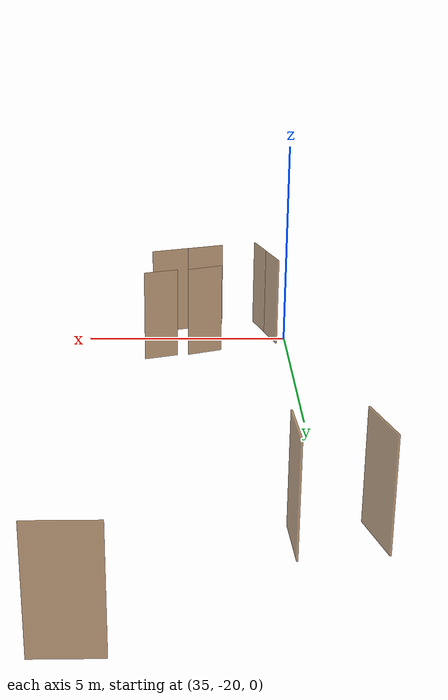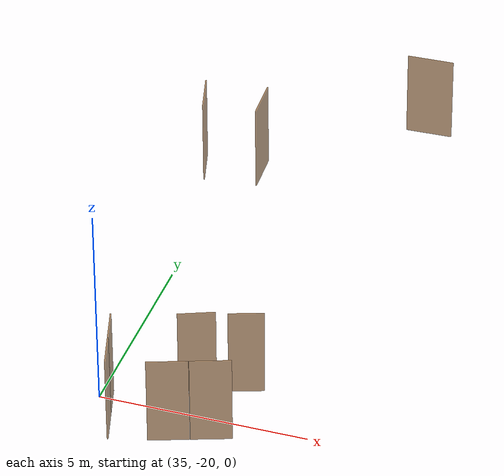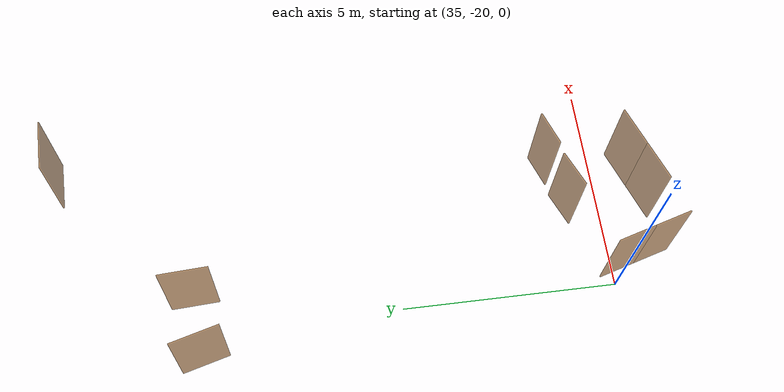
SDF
<sdf version="1.7">
 <world name="world">
  <model name="D27">
   <pose>34.2491 -10.3948 0 0 -0 1.83761</pose>
   <link name="right">
    <pose>0 0 1.11 0 -0 0</pose>
    <visual name="right_visual">
     <geometry><box><size>1.1359 0.03 2.2</size></box></geometry>
     <material><ambient>0.5 0.25 0 0.6</ambient><diffuse>0.5 0.25 0 0.6</diffuse></material>
    </visual>
    <collision name="right_collision">
     <geometry><box><size>1.1359 0.03 2.2</size></box></geometry>
     <surface><contact><collide_bitmask>2</collide_bitmask></contact></surface>
    </collision>
    <inertial>
     <mass>50</mass>
     <inertia><ixx>20.1704</ixx><iyy>25.5428</iyy><izz>5.37987</izz><ixy>0</ixy><ixz>0</ixz><iyz>0</iyz></inertia>
    </inertial>
   </link>
   <joint name="right_joint" type="revolute">
    <parent>world</parent>
    <child>right</child>
    <axis>
     <xyz>0 0 1</xyz>
     <limit><lower>0</lower><upper>1.57</upper></limit>
     <dynamics><spring_reference>0</spring_reference><spring_stiffness>0</spring_stiffness></dynamics>
    </axis>
    <pose>0.57295 0 0 0 -0 0</pose>
   </joint>
   <plugin name="door_D27" filename="libdoor.so">
    <v_max_door>0.5</v_max_door>
    <a_max_door>0.3</a_max_door>
    <a_nom_door>0.15</a_nom_door>
    <dx_min_door>0.01</dx_min_door>
    <f_max_door>500.0</f_max_door>
    <door name="D27" type="SwingDoor" left_joint_name="empty_joint" right_joint_name="right_joint"/>
   </plugin>
  </model>
  <model name="D28">
   <pose>35.6845 -10.236 0 0 -0 1.62689</pose>
   <link name="right">
    <pose>0 0 1.11 0 -0 0</pose>
    <visual name="right_visual">
     <geometry><box><size>1.11833 0.03 2.2</size></box></geometry>
     <material><ambient>0.5 0.25 0 0.6</ambient><diffuse>0.5 0.25 0 0.6</diffuse></material>
    </visual>
    <collision name="right_collision">
     <geometry><box><size>1.11833 0.03 2.2</size></box></geometry>
     <surface><contact><collide_bitmask>2</collide_bitmask></contact></surface>
    </collision>
    <inertial>
     <mass>50</mass>
     <inertia><ixx>20.1704</ixx><iyy>25.3777</iyy><izz>5.21482</izz><ixy>0</ixy><ixz>0</ixz><iyz>0</iyz></inertia>
    </inertial>
   </link>
   <joint name="right_joint" type="revolute">
    <parent>world</parent>
    <child>right</child>
    <axis>
     <xyz>0 0 1</xyz>
     <limit><lower>0</lower><upper>1.57</upper></limit>
     <dynamics><spring_reference>0</spring_reference><spring_stiffness>0</spring_stiffness></dynamics>
    </axis>
    <pose>0.564164 0 0 0 -0 0</pose>
   </joint>
   <plugin name="door_D28" filename="libdoor.so">
    <v_max_door>0.5</v_max_door>
    <a_max_door>0.3</a_max_door>
    <a_nom_door>0.15</a_nom_door>
    <dx_min_door>0.01</dx_min_door>
    <f_max_door>500.0</f_max_door>
    <door name="D28" type="SwingDoor" left_joint_name="empty_joint" right_joint_name="right_joint"/>
   </plugin>
  </model>
  <model name="D29">
   <pose>39.1322 -7.20514 0 0 -0 -3.11811</pose>
   <link name="right">
    <pose>0 0 1.11 0 -0 0</pose>
    <visual name="right_visual">
     <geometry><box><size>1.16347 0.03 2.2</size></box></geometry>
     <material><ambient>0.5 0.25 0 0.6</ambient><diffuse>0.5 0.25 0 0.6</diffuse></material>
    </visual>
    <collision name="right_collision">
     <geometry><box><size>1.16347 0.03 2.2</size></box></geometry>
     <surface><contact><collide_bitmask>2</collide_bitmask></contact></surface>
    </collision>
    <inertial>
     <mass>50</mass>
     <inertia><ixx>20.1704</ixx><iyy>25.8069</iyy><izz>5.64402</izz><ixy>0</ixy><ixz>0</ixz><iyz>0</iyz></inertia>
    </inertial>
   </link>
   <joint name="right_joint" type="revolute">
    <parent>world</parent>
    <child>right</child>
    <axis>
     <xyz>0 0 1</xyz>
     <limit><lower>0</lower><upper>1.57</upper></limit>
     <dynamics><spring_reference>0</spring_reference><spring_stiffness>0</spring_stiffness></dynamics>
    </axis>
    <pose>0.586735 0 0 0 -0 0</pose>
   </joint>
   <plugin name="door_D29" filename="libdoor.so">
    <v_max_door>0.5</v_max_door>
    <a_max_door>0.3</a_max_door>
    <a_nom_door>0.15</a_nom_door>
    <dx_min_door>0.01</dx_min_door>
    <f_max_door>500.0</f_max_door>
    <door name="D29" type="SwingDoor" left_joint_name="empty_joint" right_joint_name="right_joint"/>
   </plugin>
  </model>
  <model name="D39">
   <pose>37.0629 -19.0735 0 -0 -0 -2.74755</pose>
   <link name="right">
    <pose>0 0 1.11 0 -0 0</pose>
    <visual name="right_visual">
     <geometry><box><size>0.87941 0.03 2.2</size></box></geometry>
     <material><ambient>0.5 0.25 0 0.6</ambient><diffuse>0.5 0.25 0 0.6</diffuse></material>
    </visual>
    <collision name="right_collision">
     <geometry><box><size>0.87941 0.03 2.2</size></box></geometry>
     <surface><contact><collide_bitmask>2</collide_bitmask></contact></surface>
    </collision>
    <inertial>
     <mass>50</mass>
     <inertia><ixx>20.1704</ixx><iyy>23.389</iyy><izz>3.22609</izz><ixy>0</ixy><ixz>0</ixz><iyz>0</iyz></inertia>
    </inertial>
   </link>
   <joint name="right_joint" type="revolute">
    <parent>world</parent>
    <child>right</child>
    <axis>
     <xyz>0 0 1</xyz>
     <limit><lower>0</lower><upper>1.57</upper></limit>
     <dynamics><spring_reference>0</spring_reference><spring_stiffness>0</spring_stiffness></dynamics>
    </axis>
    <pose>0.444705 0 0 0 -0 0</pose>
   </joint>
   <plugin name="door_D39" filename="libdoor.so">
    <v_max_door>0.5</v_max_door>
    <a_max_door>0.3</a_max_door>
    <a_nom_door>0.15</a_nom_door>
    <dx_min_door>0.01</dx_min_door>
    <f_max_door>500.0</f_max_door>
    <door name="D39" type="SwingDoor" left_joint_name="empty_joint" right_joint_name="right_joint"/>
   </plugin>
  </model>
  <model name="D40">
   <pose>38.135 -18.7389 0 0 -0 0.340493</pose>
   <link name="right">
    <pose>0 0 1.11 0 -0 0</pose>
    <visual name="right_visual">
     <geometry><box><size>0.833605 0.03 2.2</size></box></geometry>
     <material><ambient>0.5 0.25 0 0.6</ambient><diffuse>0.5 0.25 0 0.6</diffuse></material>
    </visual>
    <collision name="right_collision">
     <geometry><box><size>0.833605 0.03 2.2</size></box></geometry>
     <surface><contact><collide_bitmask>2</collide_bitmask></contact></surface>
    </collision>
    <inertial>
     <mass>50</mass>
     <inertia><ixx>20.1704</ixx><iyy>23.0621</iyy><izz>2.89915</izz><ixy>0</ixy><ixz>0</ixz><iyz>0</iyz></inertia>
    </inertial>
   </link>
   <joint name="right_joint" type="revolute">
    <parent>world</parent>
    <child>right</child>
    <axis>
     <xyz>0 0 1</xyz>
     <limit><lower>0</lower><upper>1.57</upper></limit>
     <dynamics><spring_reference>0</spring_reference><spring_stiffness>0</spring_stiffness></dynamics>
    </axis>
    <pose>0.421802 0 0 0 -0 0</pose>
   </joint>
   <plugin name="door_D40" filename="libdoor.so">
    <v_max_door>0.5</v_max_door>
    <a_max_door>0.3</a_max_door>
    <a_nom_door>0.15</a_nom_door>
    <dx_min_door>0.01</dx_min_door>
    <f_max_door>500.0</f_max_door>
    <door name="D40" type="SwingDoor" left_joint_name="empty_joint" right_joint_name="right_joint"/>
   </plugin>
  </model>
  <model name="DH5">
   <pose>35.4783 -20.5462 0 0 -0 1.854</pose>
   <link name="right">
    <pose>0.44729 0 1.11 0 -0 0</pose>
    <visual name="right_visual">
     <geometry><box><size>0.884581 0.03 2.2</size></box></geometry>
     <material><ambient>0.5 0.25 0 0.6</ambient><diffuse>0.5 0.25 0 0.6</diffuse></material>
    </visual>
    <collision name="right_collision">
     <geometry><box><size>0.884581 0.03 2.2</size></box></geometry>
     <surface><contact><collide_bitmask>2</collide_bitmask></contact></surface>
    </collision>
    <inertial>
     <mass>50</mass>
     <inertia><ixx>20.1704</ixx><iyy>23.427</iyy><izz>3.2641</izz><ixy>0</ixy><ixz>0</ixz><iyz>0</iyz></inertia>
    </inertial>
   </link>
   <joint name="right_joint" type="revolute">
    <parent>world</parent>
    <child>right</child>
    <axis>
     <xyz>0 0 -1</xyz>
     <limit><lower>0</lower><upper>1.57</upper></limit>
     <dynamics><spring_reference>0</spring_reference><spring_stiffness>0</spring_stiffness></dynamics>
    </axis>
    <pose>0.44729 0 0 0 -0 0</pose>
   </joint>
   <link name="left">
    <pose>-0.44729 0 1.11 0 -0 0</pose>
    <visual name="left_visual">
     <geometry><box><size>0.884581 0.03 2.2</size></box></geometry>
     <material><ambient>0.5 0.25 0 0.6</ambient><diffuse>0.5 0.25 0 0.6</diffuse></material>
    </visual>
    <collision name="left_collision">
     <geometry><box><size>0.884581 0.03 2.2</size></box></geometry>
     <surface><contact><collide_bitmask>2</collide_bitmask></contact></surface>
    </collision>
    <inertial>
     <mass>50</mass>
     <inertia><ixx>20.1704</ixx><iyy>23.427</iyy><izz>3.2641</izz><ixy>0</ixy><ixz>0</ixz><iyz>0</iyz></inertia>
    </inertial>
   </link>
   <joint name="left_joint" type="revolute">
    <parent>world</parent>
    <child>left</child>
    <axis>
     <xyz>0 0 -1</xyz>
     <limit><lower>-1.57</lower><upper>0</upper></limit>
     <dynamics><spring_reference>0</spring_reference><spring_stiffness>0</spring_stiffness></dynamics>
    </axis>
    <pose>-0.44729 0 0 0 -0 0</pose>
   </joint>
   <plugin name="door_DH5" filename="libdoor.so">
    <v_max_door>0.5</v_max_door>
    <a_max_door>0.3</a_max_door>
    <a_nom_door>0.15</a_nom_door>
    <dx_min_door>0.01</dx_min_door>
    <f_max_door>500.0</f_max_door>
    <door name="DH5" type="DoubleSwingDoor" left_joint_name="left_joint" right_joint_name="right_joint"/>
   </plugin>
  </model>
  <model name="DH6">
   <pose>37.4887 -20.8187 -0 0 -0 0.345673</pose>
   <link name="right">
    <pose>0.48223 0 1.11 0 -0 0</pose>
    <visual name="right_visual">
     <geometry><box><size>0.954459 0.03 2.2</size></box></geometry>
     <material><ambient>0.5 0.25 0 0.6</ambient><diffuse>0.5 0.25 0 0.6</diffuse></material>
    </visual>
    <collision name="right_collision">
     <geometry><box><size>0.954459 0.03 2.2</size></box></geometry>
     <surface><contact><collide_bitmask>2</collide_bitmask></contact></surface>
    </collision>
    <inertial>
     <mass>50</mass>
     <inertia><ixx>20.1704</ixx><iyy>23.9625</iyy><izz>3.79955</izz><ixy>0</ixy><ixz>0</ixz><iyz>0</iyz></inertia>
    </inertial>
   </link>
   <joint name="right_joint" type="revolute">
    <parent>world</parent>
    <child>right</child>
    <axis>
     <xyz>0 0 -1</xyz>
     <limit><lower>0</lower><upper>1.57</upper></limit>
     <dynamics><spring_reference>0</spring_reference><spring_stiffness>0</spring_stiffness></dynamics>
    </axis>
    <pose>0.48223 0 0 0 -0 0</pose>
   </joint>
   <link name="left">
    <pose>-0.48223 0 1.11 0 -0 0</pose>
    <visual name="left_visual">
     <geometry><box><size>0.954459 0.03 2.2</size></box></geometry>
     <material><ambient>0.5 0.25 0 0.6</ambient><diffuse>0.5 0.25 0 0.6</diffuse></material>
    </visual>
    <collision name="left_collision">
     <geometry><box><size>0.954459 0.03 2.2</size></box></geometry>
     <surface><contact><collide_bitmask>2</collide_bitmask></contact></surface>
    </collision>
    <inertial>
     <mass>50</mass>
     <inertia><ixx>20.1704</ixx><iyy>23.9625</iyy><izz>3.79955</izz><ixy>0</ixy><ixz>0</ixz><iyz>0</iyz></inertia>
    </inertial>
   </link>
   <joint name="left_joint" type="revolute">
    <parent>world</parent>
    <child>left</child>
    <axis>
     <xyz>0 0 -1</xyz>
     <limit><lower>-1.57</lower><upper>0</upper></limit>
     <dynamics><spring_reference>0</spring_reference><spring_stiffness>0</spring_stiffness></dynamics>
    </axis>
    <pose>-0.48223 0 0 0 -0 0</pose>
   </joint>
   <plugin name="door_DH6" filename="libdoor.so">
    <v_max_door>0.5</v_max_door>
    <a_max_door>0.3</a_max_door>
    <a_nom_door>0.15</a_nom_door>
    <dx_min_door>0.01</dx_min_door>
    <f_max_door>500.0</f_max_door>
    <door name="DH6" type="DoubleSwingDoor" left_joint_name="left_joint" right_joint_name="right_joint"/>
   </plugin>
  </model>
 </world>
</sdf>
